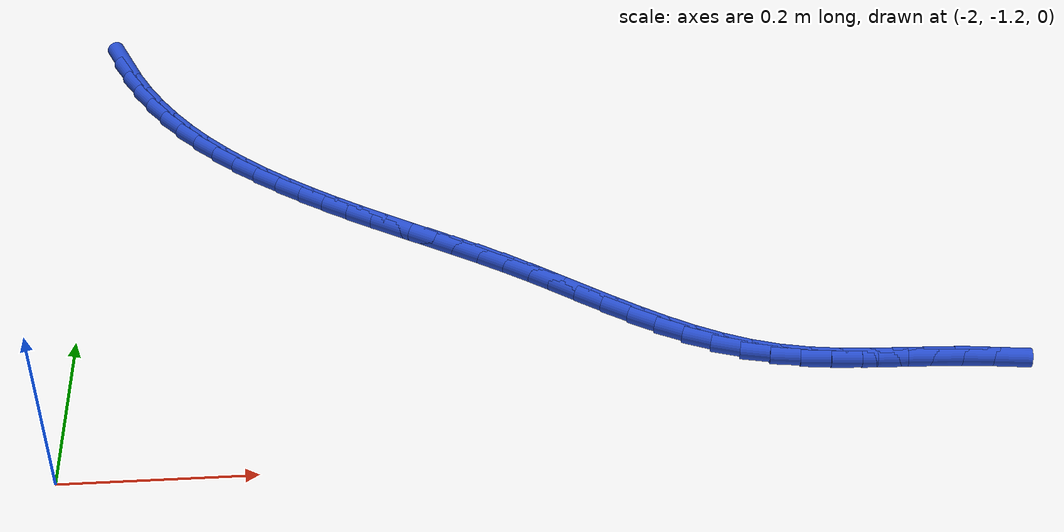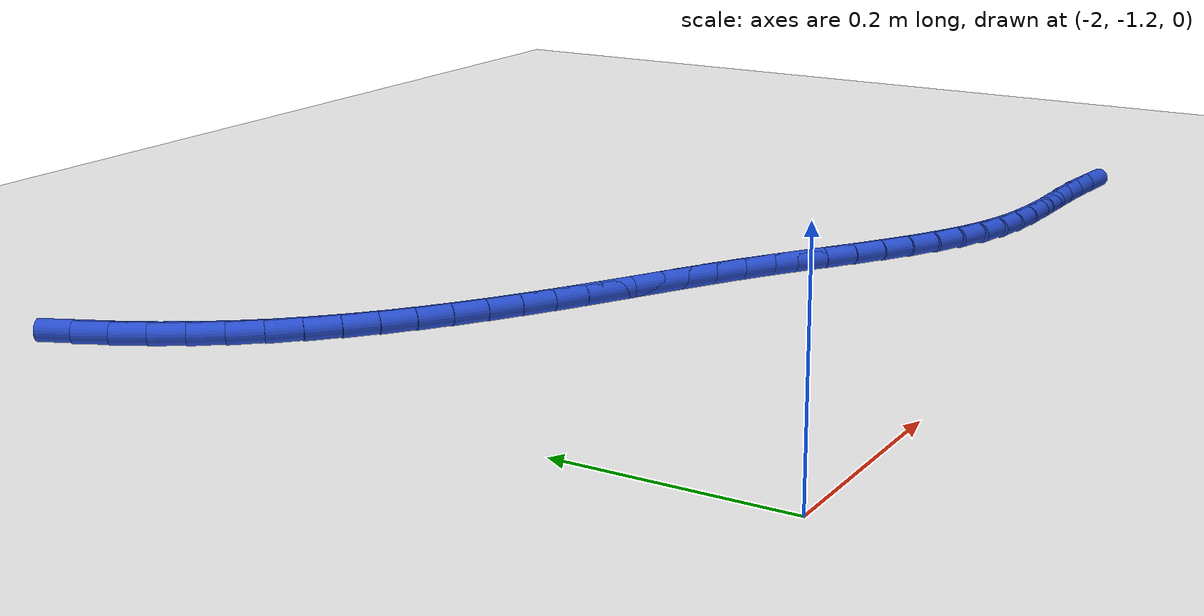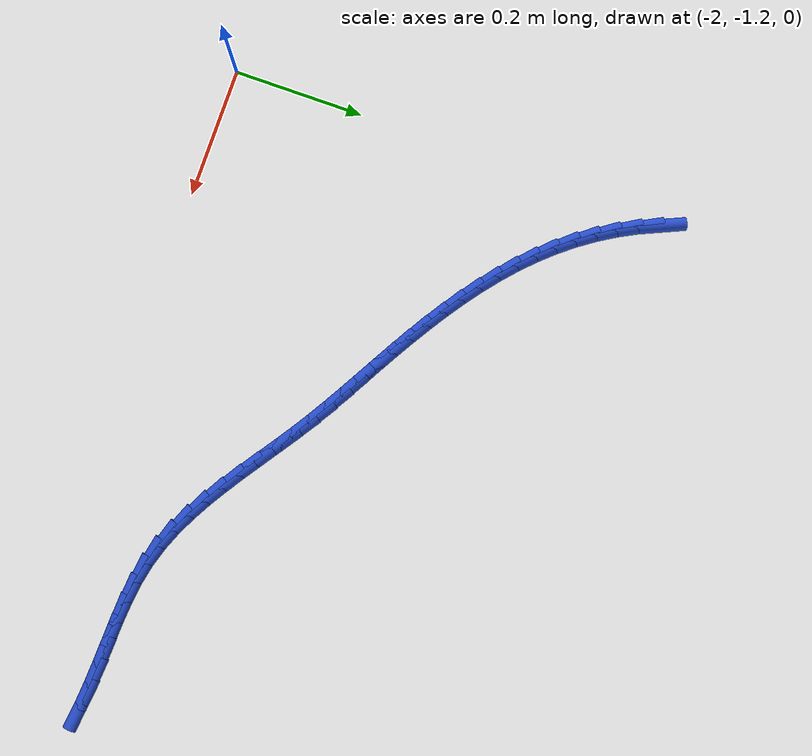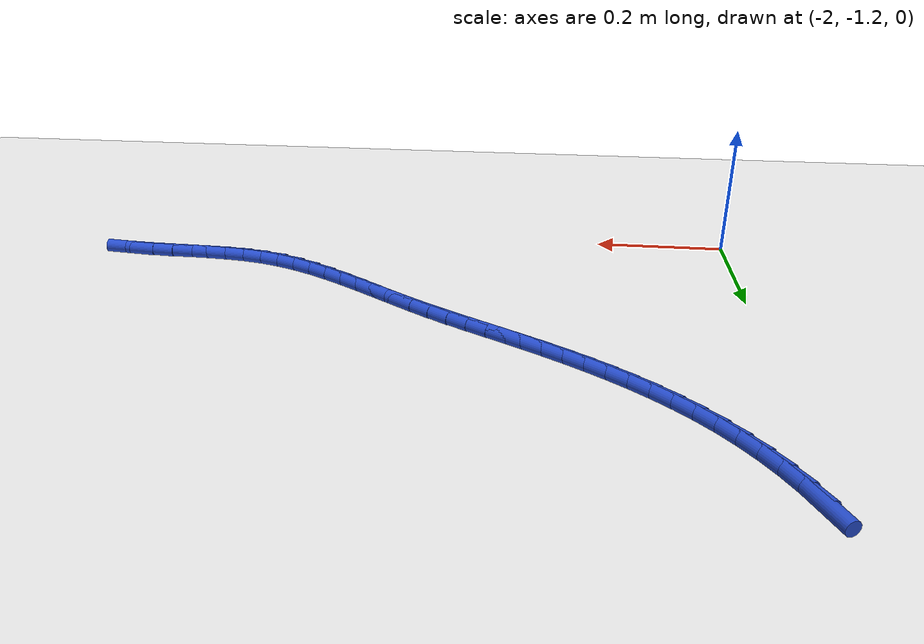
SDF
<sdf version="1.6">
 <world name="default">
  <model name="ground_plane">
   <static>1</static>
   <link name="link">
    <collision name="collision">
     <geometry><plane><normal>0 0 1</normal><size>100 100</size></plane></geometry>
     <surface><friction><ode><mu>100</mu><mu2>50</mu2></ode></friction></surface>
    </collision>
    <visual name="visual">
     <cast_shadows>0</cast_shadows>
     <geometry><plane><normal>0 0 1</normal><size>100 100</size></plane></geometry>
     <material>
      <script><uri>file://media/materials/scripts/gazebo.material</uri><name>Gazebo/WhiteGlow</name></script>
     </material>
    </visual>
   </link>
  </model>
  <model name="line">
   <link name="link_130">
    <pose>-1.9847929649412501 -0.5231701847841785 0.01 0 1.57 -1.1542859141055761</pose>
    <collision name="collision">
     <geometry><cylinder><radius>0.01</radius><length>0.08</length></cylinder></geometry>
    </collision>
    <visual name="visual">
     <material>
      <script><name>Gazebo/Blue</name><uri>file://media/materials/scripts/gazebo.material</uri></script>
     </material>
     <geometry><cylinder><radius>0.01</radius><length>0.08</length></cylinder></geometry>
    </visual>
   </link>
   <link name="link_131">
    <pose>-1.9717852257939497 -0.5525732797195915 0.01 0 1.57 -1.0867951398904583</pose>
    <collision name="collision">
     <geometry><cylinder><radius>0.01</radius><length>0.08</length></cylinder></geometry>
    </collision>
    <visual name="visual">
     <material>
      <script><name>Gazebo/Blue</name><uri>file://media/materials/scripts/gazebo.material</uri></script>
     </material>
     <geometry><cylinder><radius>0.01</radius><length>0.08</length></cylinder></geometry>
    </visual>
   </link>
   <link name="link_132">
    <pose>-1.9568511938830653 -0.5809807918450149 0.01 0 1.57 -1.0215737720854219</pose>
    <collision name="collision">
     <geometry><cylinder><radius>0.01</radius><length>0.08</length></cylinder></geometry>
    </collision>
    <visual name="visual">
     <material>
      <script><name>Gazebo/Blue</name><uri>file://media/materials/scripts/gazebo.material</uri></script>
     </material>
     <geometry><cylinder><radius>0.01</radius><length>0.08</length></cylinder></geometry>
    </visual>
   </link>
   <link name="link_133">
    <pose>-1.9401234984357925 -0.6083120181591272 0.01 0 1.57 -0.9583605113383872</pose>
    <collision name="collision">
     <geometry><cylinder><radius>0.01</radius><length>0.08</length></cylinder></geometry>
    </collision>
    <visual name="visual">
     <material>
      <script><name>Gazebo/Blue</name><uri>file://media/materials/scripts/gazebo.material</uri></script>
     </material>
     <geometry><cylinder><radius>0.01</radius><length>0.08</length></cylinder></geometry>
    </visual>
   </link>
   <link name="link_134">
    <pose>-1.9217347686793265 -0.6344862556606057 0.01 0 1.57 -0.8968408385912617</pose>
    <collision name="collision">
     <geometry><cylinder><radius>0.01</radius><length>0.08</length></cylinder></geometry>
    </collision>
    <visual name="visual">
     <material>
      <script><name>Gazebo/Blue</name><uri>file://media/materials/scripts/gazebo.material</uri></script>
     </material>
     <geometry><cylinder><radius>0.01</radius><length>0.08</length></cylinder></geometry>
    </visual>
   </link>
   <link name="link_135">
    <pose>-1.9018176338408623 -0.6594228013481284 0.01 0 1.57 -0.836875680616479</pose>
    <collision name="collision">
     <geometry><cylinder><radius>0.01</radius><length>0.08</length></cylinder></geometry>
    </collision>
    <visual name="visual">
     <material>
      <script><name>Gazebo/Blue</name><uri>file://media/materials/scripts/gazebo.material</uri></script>
     </material>
     <geometry><cylinder><radius>0.01</radius><length>0.08</length></cylinder></geometry>
    </visual>
   </link>
   <link name="link_136">
    <pose>-1.8805053178824145 -0.6830505667430092 0.01 0 1.57 -0.7806486639850649</pose>
    <collision name="collision">
     <geometry><cylinder><radius>0.01</radius><length>0.08</length></cylinder></geometry>
    </collision>
    <visual name="visual">
     <material>
      <script><name>Gazebo/Blue</name><uri>file://media/materials/scripts/gazebo.material</uri></script>
     </material>
     <geometry><cylinder><radius>0.01</radius><length>0.08</length></cylinder></geometry>
    </visual>
   </link>
   <link name="link_137">
    <pose>-1.8579376285562317 -0.7054048973575808 0.01 0 1.57 -0.7298021113154055</pose>
    <collision name="collision">
     <geometry><cylinder><radius>0.01</radius><length>0.08</length></cylinder></geometry>
    </collision>
    <visual name="visual">
     <material>
      <script><name>Gazebo/Blue</name><uri>file://media/materials/scripts/gazebo.material</uri></script>
     </material>
     <geometry><cylinder><radius>0.01</radius><length>0.08</length></cylinder></geometry>
    </visual>
   </link>
   <link name="link_138">
    <pose>-1.8342584695990103 -0.7265873546612581 0.01 0 1.57 -0.6844569088045528</pose>
    <collision name="collision">
     <geometry><cylinder><radius>0.01</radius><length>0.08</length></cylinder></geometry>
    </collision>
    <visual name="visual">
     <material>
      <script><name>Gazebo/Blue</name><uri>file://media/materials/scripts/gazebo.material</uri></script>
     </material>
     <geometry><cylinder><radius>0.01</radius><length>0.08</length></cylinder></geometry>
    </visual>
   </link>
   <link name="link_139">
    <pose>-1.8096118065140752 -0.7467004986469268 0.01 0 1.57 -0.6445992601060342</pose>
    <collision name="collision">
     <geometry><cylinder><radius>0.01</radius><length>0.08</length></cylinder></geometry>
    </collision>
    <visual name="visual">
     <material>
      <script><name>Gazebo/Blue</name><uri>file://media/materials/scripts/gazebo.material</uri></script>
     </material>
     <geometry><cylinder><radius>0.01</radius><length>0.08</length></cylinder></geometry>
    </visual>
   </link>
   <link name="link_140">
    <pose>-1.7841416048047547 -0.7658468893074712 0.01 0 1.57 -0.6101445365912802</pose>
    <collision name="collision">
     <geometry><cylinder><radius>0.01</radius><length>0.08</length></cylinder></geometry>
    </collision>
    <visual name="visual">
     <material>
      <script><name>Gazebo/Blue</name><uri>file://media/materials/scripts/gazebo.material</uri></script>
     </material>
     <geometry><cylinder><radius>0.01</radius><length>0.08</length></cylinder></geometry>
    </visual>
   </link>
   <link name="link_141">
    <pose>-1.757991829974374 -0.7841290866357763 0.01 0 1.57 -0.5809732485855169</pose>
    <collision name="collision">
     <geometry><cylinder><radius>0.01</radius><length>0.08</length></cylinder></geometry>
    </collision>
    <visual name="visual">
     <material>
      <script><name>Gazebo/Blue</name><uri>file://media/materials/scripts/gazebo.material</uri></script>
     </material>
     <geometry><cylinder><radius>0.01</radius><length>0.08</length></cylinder></geometry>
    </visual>
   </link>
   <link name="link_142">
    <pose>-1.7313064475262603 -0.8016496506247275 0.01 0 1.57 -0.5569603706092044</pose>
    <collision name="collision">
     <geometry><cylinder><radius>0.01</radius><length>0.08</length></cylinder></geometry>
    </collision>
    <visual name="visual">
     <material>
      <script><name>Gazebo/Blue</name><uri>file://media/materials/scripts/gazebo.material</uri></script>
     </material>
     <geometry><cylinder><radius>0.01</radius><length>0.08</length></cylinder></geometry>
    </visual>
   </link>
   <link name="link_143">
    <pose>-1.7042294229637396 -0.8185111412672105 0.01 0 1.57 -0.5379983512945112</pose>
    <collision name="collision">
     <geometry><cylinder><radius>0.01</radius><length>0.08</length></cylinder></geometry>
    </collision>
    <visual name="visual">
     <material>
      <script><name>Gazebo/Blue</name><uri>file://media/materials/scripts/gazebo.material</uri></script>
     </material>
     <geometry><cylinder><radius>0.01</radius><length>0.08</length></cylinder></geometry>
    </visual>
   </link>
   <link name="link_144">
    <pose>-1.6769047217901392 -0.834816118556109 0.01 0 1.57 -0.5242543107321165</pose>
    <collision name="collision">
     <geometry><cylinder><radius>0.01</radius><length>0.08</length></cylinder></geometry>
    </collision>
    <visual name="visual">
     <material>
      <script><name>Gazebo/Blue</name><uri>file://media/materials/scripts/gazebo.material</uri></script>
     </material>
     <geometry><cylinder><radius>0.01</radius><length>0.08</length></cylinder></geometry>
    </visual>
   </link>
   <link name="link_145">
    <pose>-1.649469539503709 -0.8506798171514951 0.01 0 1.57 -0.517642164232154</pose>
    <collision name="collision">
     <geometry><cylinder><radius>0.01</radius><length>0.08</length></cylinder></geometry>
    </collision>
    <visual name="visual">
     <material>
      <script><name>Gazebo/Blue</name><uri>file://media/materials/scripts/gazebo.material</uri></script>
     </material>
     <geometry><cylinder><radius>0.01</radius><length>0.08</length></cylinder></geometry>
    </visual>
   </link>
   <link name="link_146">
    <pose>-1.6220075744450693 -0.8663176280147741 0.01 0 1.57 -0.5191551456185473</pose>
    <collision name="collision">
     <geometry><cylinder><radius>0.01</radius><length>0.08</length></cylinder></geometry>
    </collision>
    <visual name="visual">
     <material>
      <script><name>Gazebo/Blue</name><uri>file://media/materials/scripts/gazebo.material</uri></script>
     </material>
     <geometry><cylinder><radius>0.01</radius><length>0.08</length></cylinder></geometry>
    </visual>
   </link>
   <link name="link_147">
    <pose>-1.5945771220842206 -0.8819925008502265 0.01 0 1.57 -0.528793864679735</pose>
    <collision name="collision">
     <geometry><cylinder><radius>0.01</radius><length>0.08</length></cylinder></geometry>
    </collision>
    <visual name="visual">
     <material>
      <script><name>Gazebo/Blue</name><uri>file://media/materials/scripts/gazebo.material</uri></script>
     </material>
     <geometry><cylinder><radius>0.01</radius><length>0.08</length></cylinder></geometry>
    </visual>
   </link>
   <link name="link_148">
    <pose>-1.5672363241473242 -0.8979676731982541 0.01 0 1.57 -0.546425111952391</pose>
    <collision name="collision">
     <geometry><cylinder><radius>0.01</radius><length>0.08</length></cylinder></geometry>
    </collision>
    <visual name="visual">
     <material>
      <script><name>Gazebo/Blue</name><uri>file://media/materials/scripts/gazebo.material</uri></script>
     </material>
     <geometry><cylinder><radius>0.01</radius><length>0.08</length></cylinder></geometry>
    </visual>
   </link>
   <link name="link_149">
    <pose>-1.5400433223605425 -0.9145063825992579 0.01 0 1.57 -0.5713755343584226</pose>
    <collision name="collision">
     <geometry><cylinder><radius>0.01</radius><length>0.08</length></cylinder></geometry>
    </collision>
    <visual name="visual">
     <material>
      <script><name>Gazebo/Blue</name><uri>file://media/materials/scripts/gazebo.material</uri></script>
     </material>
     <geometry><cylinder><radius>0.01</radius><length>0.08</length></cylinder></geometry>
    </visual>
   </link>
   <link name="link_150">
    <pose>-1.513052968573212 -0.9318587759271828 0.01 0 1.57 -0.5936396829287218</pose>
    <collision name="collision">
     <geometry><cylinder><radius>0.01</radius><length>0.08</length></cylinder></geometry>
    </collision>
    <visual name="visual">
     <material>
      <script><name>Gazebo/Blue</name><uri>file://media/materials/scripts/gazebo.material</uri></script>
     </material>
     <geometry><cylinder><radius>0.01</radius><length>0.08</length></cylinder></geometry>
    </visual>
   </link>
   <link name="link_151">
    <pose>-1.486239359568549 -0.9499536695954163 0.01 0 1.57 -0.6034295721659677</pose>
    <collision name="collision">
     <geometry><cylinder><radius>0.01</radius><length>0.08</length></cylinder></geometry>
    </collision>
    <visual name="visual">
     <material>
      <script><name>Gazebo/Blue</name><uri>file://media/materials/scripts/gazebo.material</uri></script>
     </material>
     <geometry><cylinder><radius>0.01</radius><length>0.08</length></cylinder></geometry>
    </visual>
   </link>
   <link name="link_152">
    <pose>-1.4594929050455785 -0.9683868828371329 0.01 0 1.57 -0.6005593449182777</pose>
    <collision name="collision">
     <geometry><cylinder><radius>0.01</radius><length>0.08</length></cylinder></geometry>
    </collision>
    <visual name="visual">
     <material>
      <script><name>Gazebo/Blue</name><uri>file://media/materials/scripts/gazebo.material</uri></script>
     </material>
     <geometry><cylinder><radius>0.01</radius><length>0.08</length></cylinder></geometry>
    </visual>
   </link>
   <link name="link_153">
    <pose>-1.4327001381890658 -0.9867388099447222 0.01 0 1.57 -0.584982819546051</pose>
    <collision name="collision">
     <geometry><cylinder><radius>0.01</radius><length>0.08</length></cylinder></geometry>
    </collision>
    <visual name="visual">
     <material>
      <script><name>Gazebo/Blue</name><uri>file://media/materials/scripts/gazebo.material</uri></script>
     </material>
     <geometry><cylinder><radius>0.01</radius><length>0.08</length></cylinder></geometry>
    </visual>
   </link>
   <link name="link_154">
    <pose>-1.4057475921837745 -1.0045898452105744 0.01 0 1.57 -0.5563356799748398</pose>
    <collision name="collision">
     <geometry><cylinder><radius>0.01</radius><length>0.08</length></cylinder></geometry>
    </collision>
    <visual name="visual">
     <material>
      <script><name>Gazebo/Blue</name><uri>file://media/materials/scripts/gazebo.material</uri></script>
     </material>
     <geometry><cylinder><radius>0.01</radius><length>0.08</length></cylinder></geometry>
    </visual>
   </link>
   <link name="link_155">
    <pose>-1.3785218002144688 -1.0215203829270798 0.01 0 1.57 -0.513994657635523</pose>
    <collision name="collision">
     <geometry><cylinder><radius>0.01</radius><length>0.08</length></cylinder></geometry>
    </collision>
    <visual name="visual">
     <material>
      <script><name>Gazebo/Blue</name><uri>file://media/materials/scripts/gazebo.material</uri></script>
     </material>
     <geometry><cylinder><radius>0.01</radius><length>0.08</length></cylinder></geometry>
    </visual>
   </link>
   <link name="link_156">
    <pose>-1.3509092954659123 -1.037110817386629 0.01 0 1.57 -0.45720666880249217</pose>
    <collision name="collision">
     <geometry><cylinder><radius>0.01</radius><length>0.08</length></cylinder></geometry>
    </collision>
    <visual name="visual">
     <material>
      <script><name>Gazebo/Blue</name><uri>file://media/materials/scripts/gazebo.material</uri></script>
     </material>
     <geometry><cylinder><radius>0.01</radius><length>0.08</length></cylinder></geometry>
    </visual>
   </link>
   <link name="link_157">
    <pose>-1.3227966111228702 -1.0509415428816116 0.01 0 1.57 -0.3853249526695045</pose>
    <collision name="collision">
     <geometry><cylinder><radius>0.01</radius><length>0.08</length></cylinder></geometry>
    </collision>
    <visual name="visual">
     <material>
      <script><name>Gazebo/Blue</name><uri>file://media/materials/scripts/gazebo.material</uri></script>
     </material>
     <geometry><cylinder><radius>0.01</radius><length>0.08</length></cylinder></geometry>
    </visual>
   </link>
   <link name="link_158">
    <pose>-1.2940702803701063 -1.0625929537044179 0.01 0 1.57 -0.29818563036898615</pose>
    <collision name="collision">
     <geometry><cylinder><radius>0.01</radius><length>0.08</length></cylinder></geometry>
    </collision>
    <visual name="visual">
     <material>
      <script><name>Gazebo/Blue</name><uri>file://media/materials/scripts/gazebo.material</uri></script>
     </material>
     <geometry><cylinder><radius>0.01</radius><length>0.08</length></cylinder></geometry>
    </visual>
   </link>
   <link name="link_159">
    <pose>-1.2646168379155796 -1.07164545091891 0.01 0 1.57 -0.2033009365118508</pose>
    <collision name="collision">
     <geometry><cylinder><radius>0.01</radius><length>0.08</length></cylinder></geometry>
    </collision>
    <visual name="visual">
     <material>
      <script><name>Gazebo/Blue</name><uri>file://media/materials/scripts/gazebo.material</uri></script>
     </material>
     <geometry><cylinder><radius>0.01</radius><length>0.08</length></cylinder></geometry>
    </visual>
   </link>
   <link name="link_160">
    <pose>-1.234368198417018 -1.077881175450919 0.01 0 1.57 -0.12635564753515408</pose>
    <collision name="collision">
     <geometry><cylinder><radius>0.01</radius><length>0.08</length></cylinder></geometry>
    </collision>
    <visual name="visual">
     <material>
      <script><name>Gazebo/Blue</name><uri>file://media/materials/scripts/gazebo.material</uri></script>
     </material>
     <geometry><cylinder><radius>0.01</radius><length>0.08</length></cylinder></geometry>
    </visual>
   </link>
   <link name="link_161">
    <pose>-1.2034205439630836 -1.0818125310187308 0.01 0 1.57 -0.0730001501105219</pose>
    <collision name="collision">
     <geometry><cylinder><radius>0.01</radius><length>0.08</length></cylinder></geometry>
    </collision>
    <visual name="visual">
     <material>
      <script><name>Gazebo/Blue</name><uri>file://media/materials/scripts/gazebo.material</uri></script>
     </material>
     <geometry><cylinder><radius>0.01</radius><length>0.08</length></cylinder></geometry>
    </visual>
   </link>
   <link name="link_162">
    <pose>-1.1719072133198036 -1.0841171040480015 0.01 0 1.57 -0.04240213478257076</pose>
    <collision name="collision">
     <geometry><cylinder><radius>0.01</radius><length>0.08</length></cylinder></geometry>
    </collision>
    <visual name="visual">
     <material>
      <script><name>Gazebo/Blue</name><uri>file://media/materials/scripts/gazebo.material</uri></script>
     </material>
     <geometry><cylinder><radius>0.01</radius><length>0.08</length></cylinder></geometry>
    </visual>
   </link>
   <link name="link_163">
    <pose>-1.1399615452532048 -1.0854724809643863 0.01 0 1.57 -0.03359809579304824</pose>
    <collision name="collision">
     <geometry><cylinder><radius>0.01</radius><length>0.08</length></cylinder></geometry>
    </collision>
    <visual name="visual">
     <material>
      <script><name>Gazebo/Blue</name><uri>file://media/materials/scripts/gazebo.material</uri></script>
     </material>
     <geometry><cylinder><radius>0.01</radius><length>0.08</length></cylinder></geometry>
    </visual>
   </link>
   <link name="link_164">
    <pose>-1.1077168785293148 -1.0865562481935405 0.01 0 1.57 -0.04593277139448679</pose>
    <collision name="collision">
     <geometry><cylinder><radius>0.01</radius><length>0.08</length></cylinder></geometry>
    </collision>
    <visual name="visual">
     <material>
      <script><name>Gazebo/Blue</name><uri>file://media/materials/scripts/gazebo.material</uri></script>
     </material>
     <geometry><cylinder><radius>0.01</radius><length>0.08</length></cylinder></geometry>
    </visual>
   </link>
   <link name="link_165">
    <pose>-1.0753065519141614 -1.0880459921611196 0.01 0 1.57 -0.07727813574486596</pose>
    <collision name="collision">
     <geometry><cylinder><radius>0.01</radius><length>0.08</length></cylinder></geometry>
    </collision>
    <visual name="visual">
     <material>
      <script><name>Gazebo/Blue</name><uri>file://media/materials/scripts/gazebo.material</uri></script>
     </material>
     <geometry><cylinder><radius>0.01</radius><length>0.08</length></cylinder></geometry>
    </visual>
   </link>
   <link name="link_166">
    <pose>-1.0428581768140455 -1.0905585456705704 0.01 0 1.57 -0.108617851427374</pose>
    <collision name="collision">
     <geometry><cylinder><radius>0.01</radius><length>0.08</length></cylinder></geometry>
    </collision>
    <visual name="visual">
     <material>
      <script><name>Gazebo/Blue</name><uri>file://media/materials/scripts/gazebo.material</uri></script>
     </material>
     <geometry><cylinder><radius>0.01</radius><length>0.08</length></cylinder></geometry>
    </visual>
   </link>
  </model>
 </world>
</sdf>
